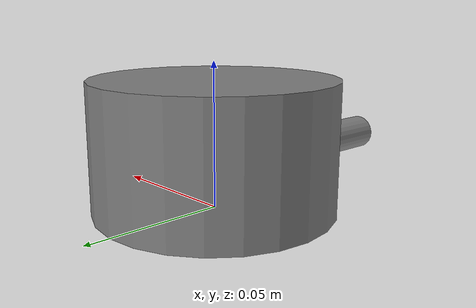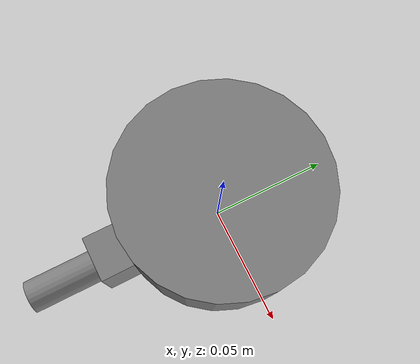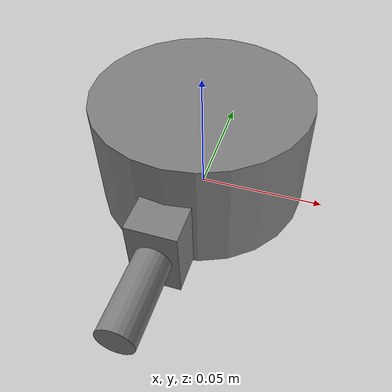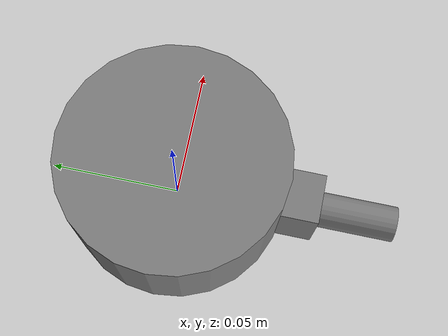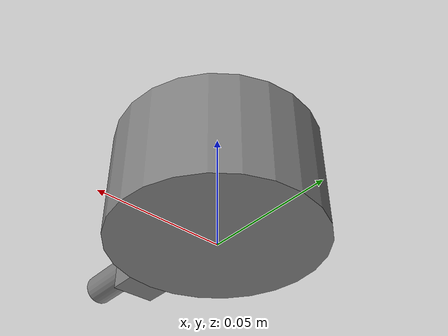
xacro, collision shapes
<?xml version="1.0"?>
<robot xmlns:xacro="http://wiki.ros.org/xacro"
       name="sensor" >

  <xacro:arg name="prefix" default="ft_sensor0"/>

  <xacro:include filename="$(find rokubimini_description)/urdf/BFT_LAXS_ECAT_M8.urdf.xacro" />

  <xacro:BFT_LAXS_ECAT_M8 prefix="$(arg prefix)" />

  <link name="world" />

  <joint name="world_joint" type="fixed">
    <parent link="world" />
    <child link = "$(arg prefix)_mounting" />
    <origin xyz="0.0 0.0 0.0" rpy="0.0 0.0 0.0" />
  </joint>

</robot>

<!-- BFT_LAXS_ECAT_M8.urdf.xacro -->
<robot xmlns:xacro="http://wiki.ros.org/xacro">
  <xacro:macro name="BFT_LAXS_ECAT_M8" params="prefix">

    <link
      name="${prefix}_mounting">
      <inertial>
        <origin
          xyz="-2.4626E-07 -0.0017373 0.016926"
          rpy="0 0 0" />
        <mass
          value="0.31382" />
        <inertia
          ixx="0.00019879"
          ixy="-2.4224E-11"
          ixz="7.8769E-10"
          iyy="0.00019983"
          iyz="2.9785E-07"
          izz="0.00034213" />
      </inertial>
      <visual>
        <origin
          xyz="0 0 0"
          rpy="0 0 0" />
        <geometry>
          <mesh
            filename="package://rokubimini_description/meshes/BFT_LAXS_M8/mounting.STL" />
        </geometry>
        <material name="">
          <color rgba="0.50196 0.50196 0.50196 1" />
        </material>
      </visual>
      <collision>
        <origin
          xyz="0 0 0.02225"
          rpy="0 0 0" />
        <geometry>
          <cylinder radius="0.0415" length="0.0445"/>
        </geometry>
      </collision>
      <collision>
        <origin
          xyz="0 -0.0465 0.015"
          rpy="0 0 0" />
        <geometry>
          <box size="0.018 0.015 0.027" />
        </geometry>
      </collision>
      <collision>
        <origin
          xyz="0 -0.0665 0.015"
          rpy="1.57 0 0" />
        <geometry>
          <cylinder radius="0.0065" length="0.032"/>
        </geometry>
      </collision>
    </link>

    <link
      name="${prefix}_imu">
      <inertial>
        <origin
          xyz="-7.28165E-05 1.54951E-05 -0.00279"
          rpy="0 0 0" />
        <mass
          value="0.00841533584597686" />
        <inertia
          ixx="4.36835040253874E-07"
          ixy="-6.9860947582594E-11"
          ixz="-6.08397676632155E-15"
          iyy="4.41035649008911E-07"
          iyz="1.10331483796967E-11"
          izz="8.74962095262403E-07" />
      </inertial>
    </link>
    <joint
        name="mounting_to_imu"
        type="fixed">
      <origin
        xyz="0 0 0.01195"
        rpy="0 0 0" />
      <parent
        link="${prefix}_mounting" />
      <child
        link="${prefix}_imu" />
      <axis
        xyz="0 0 0" />
    </joint>
    <link
      name="${prefix}_wrench">
      <inertial>
        <origin
          xyz="-9.92E-05 -5.1511E-06 -0.012601"
          rpy="0 0 0" />
        <mass
          value="0.1522" />
        <inertia
          ixx="4.3975E-05"
          ixy="7.7798E-11"
          ixz="1.3264E-07"
          iyy="4.3577E-05"
          iyz="-1.1015E-08"
          izz="6.8828E-05" />
      </inertial>
    </link>

    <joint
      name="mounting_to_wrench"
      type="fixed">
      <origin
        xyz="0.0 0.0 0.0445"
        rpy="0 0 0" />
      <parent
        link="${prefix}_mounting" />
      <child
        link="${prefix}_wrench" />
      <axis
        xyz="0 0 0" />
    </joint>

    <link
      name="mech1">
    </link>
    <joint
      name="mounting_to_mech1"
      type="fixed">
      <origin
        xyz="0.0415 0 0.0145"
        rpy="1.5708 0 1.5708" />
      <parent
        link="${prefix}_mounting" />
      <child
        link="mech1" />
      <axis
        xyz="0 0 0" />
    </joint>

    <link
      name="mech2">
    </link>

    <joint
      name="mounting_to_mech2"
      type="fixed">
      <origin
        xyz="0 0.0415 0.0145"
        rpy="1.5708 0 3.1416" />
      <parent
        link="${prefix}_mounting" />
      <child
        link="mech2" />
      <axis
        xyz="0 0 0" />
    </joint>

    <link
      name="mech3">
    </link>
    <joint
      name="mounting_to_mech3"
      type="fixed">
      <origin
        xyz="-0.0415 0 0.0145"
        rpy="1.5708 0 -1.5708" />
      <parent
        link="${prefix}_mounting" />
      <child
        link="mech3" />
      <axis
        xyz="0 0 0" />
    </joint>

  </xacro:macro>
</robot>
